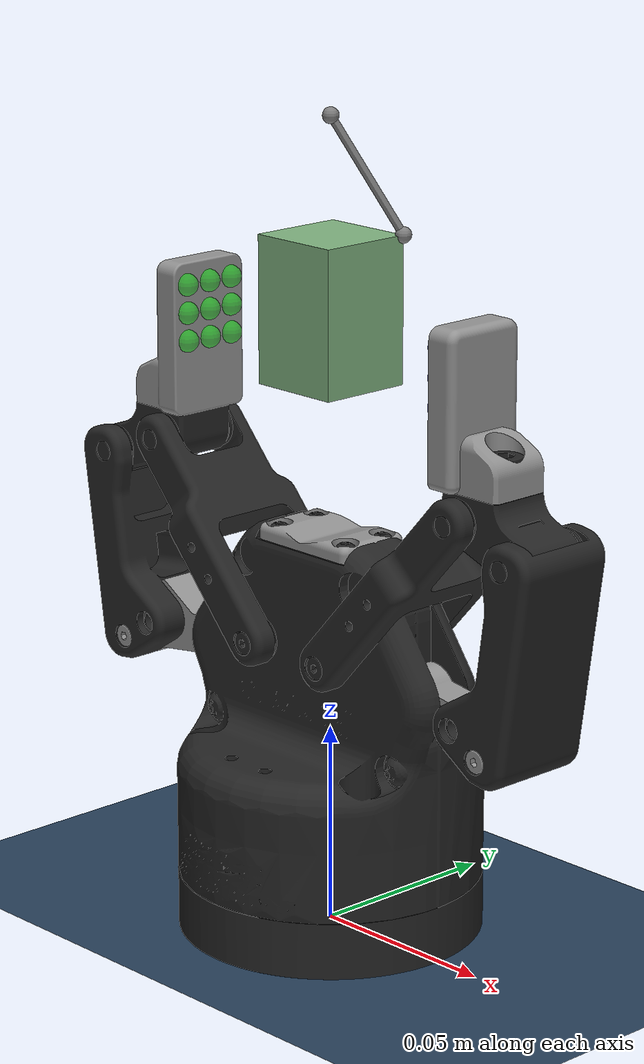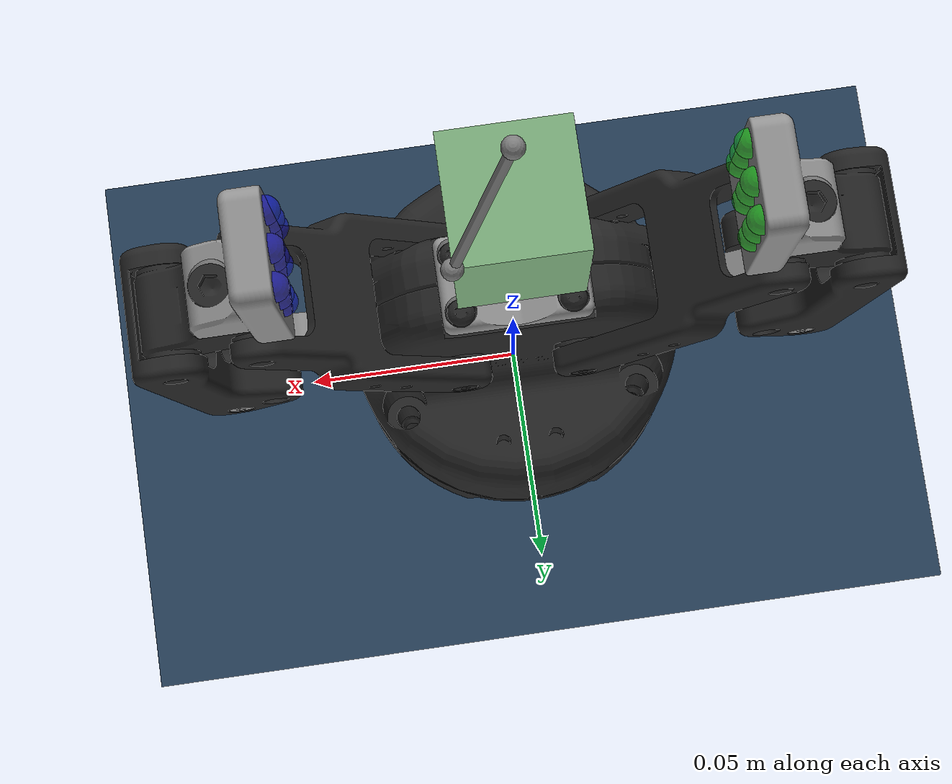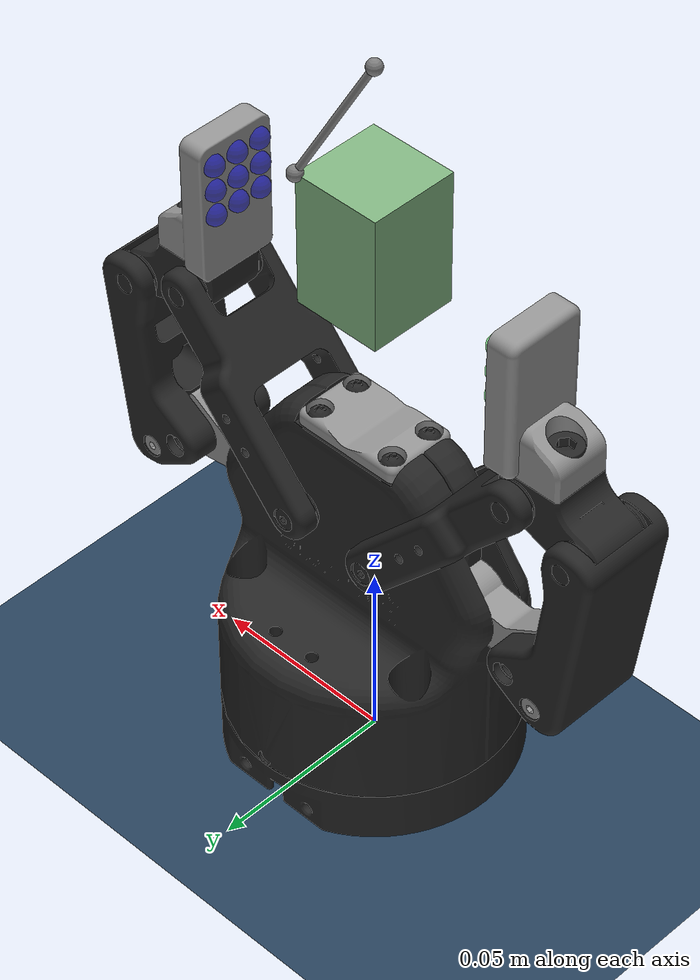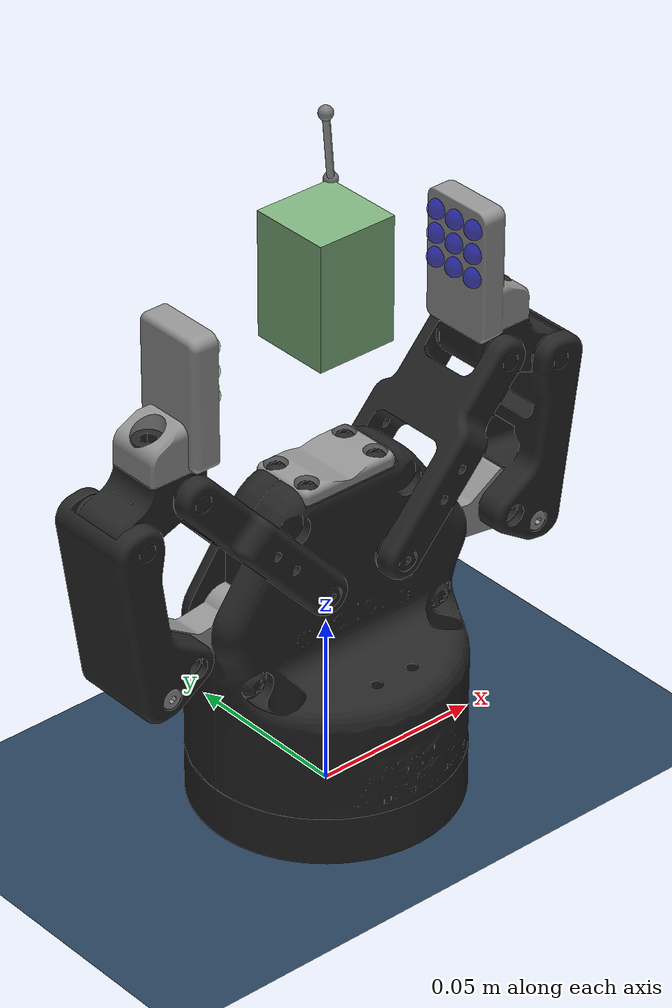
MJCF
<mujoco model="2f85 pts spheres scene">
  <include file="2f85_pts_spheres.xml" />

  <option viscosity="0.1" timestep="0.002" />

  <statistic center="0 0 0.08" extent="0.3" />

  <visual>
    <headlight diffuse="0.6 0.6 0.6" ambient="0.3 0.3 0.3" specular="0 0 0" />
    <rgba haze="0.15 0.25 0.35 1" />
    <global azimuth="60" elevation="-20" />
  </visual>

  <asset>
    <texture
      type="skybox"
      builtin="gradient"
      rgb1="0.3 0.5 0.7"
      rgb2="0 0 0"
      width="512"
      height="3072"
    />
    <texture
      type="2d"
      name="groundplane"
      builtin="checker"
      mark="edge"
      rgb1="0.2 0.3 0.4"
      rgb2="0.1 0.2 0.3"
      markrgb="0.8 0.8 0.8"
      width="300"
      height="300"
    />
    <material
      name="groundplane"
      texture="groundplane"
      texuniform="true"
      texrepeat="5 5"
      reflectance="0.2"
    />
  </asset>

  <worldbody>
    <light pos="0 0 1" />
    <light pos="0 -0.2 1" dir="0 0.2 -0.8" directional="true" />
    <geom name="floor" size="0 0 0.05" type="plane" material="groundplane" />
    <site size="0.002" pos="0 0 0.2" name="anchor" />
    <body name="object" pos="0 0 0.154">
      <freejoint />
      <geom
        name="grasp_box"
        type="box"
        size="0.012 0.012 0.018"
        mass="0.05"
        rgba="0.5 0.7 0.5 1"
        friction="0.7 0.03 0.01"
        priority="1"
      />
      <site size="0.002" pos="0.012 0.012 0.018" name="hook" />
    </body>
  </worldbody>

  <tendon>
    <spatial limited="true" range="0 0.02" width="0.001">
      <site site="hook" />
      <site site="anchor" />
    </spatial>
  </tendon>
</mujoco>

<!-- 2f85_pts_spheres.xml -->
<mujoco model="Dual_wrist_camera_pts_spheres">
  <compiler angle="radian" meshdir="assets" autolimits="true" />
  <option cone="elliptic" impratio="10" />
  <size njmax="128" nconmax="256" />
  <asset>
    <material name="metal" rgba="0.58 0.58 0.58 1" />
    <material name="silicone" rgba="0.1882 0.1882 0.1882 1" />
    <material name="black" rgba="0.149 0.149 0.149 1" />
    <mesh file="base.stl" />
    <mesh file="base_coupling.stl" />
    <mesh file="c-a01-85-open.stl" />
    <mesh file="driver.stl" />
    <mesh file="coupler.stl" />
    <mesh file="spring_link.stl" />
    <mesh file="follower.stl" />
    <mesh file="tongue.stl" />
  </asset>
  <default>
    <default class="2f85">
      <mesh scale="0.001 0.001 0.001" />
      <general biastype="affine" />
      <joint axis="0 0 1" />
      <default class="driver">
        <joint range="0 0.9" armature="0.005" damping="0.1" solimplimit="0.95 0.99 0.001" solreflimit="0.005 1" />
      </default>
      <default class="follower">
        <joint range="-0.872664 0.9" armature="0.001" solimplimit="0.95 0.99 0.001" solreflimit="0.005 1" />
      </default>
      <default class="spring_link">
        <joint range="-0.29670597283 0.9" armature="0.001" stiffness="0.05" springref="2.62" damping="0.00125" />
      </default>
      <default class="coupler">
        <joint range="-1.57 0" armature="0.001" solimplimit="0.95 0.99 0.001" solreflimit="0.005 1" />
      </default>
      <default class="visual">
        <geom type="mesh" contype="0" conaffinity="0" group="2" material="black" />
      </default>
      <default class="collision">
        <geom type="mesh" group="3" />
        <default class="pad_box1">
          <geom mass="1e-6" type="box" pos="0.043258  0 0.12" size="0.002 0.011 0.009375" friction="0.7" solimp="0.95 0.99 0.001" solref="0.004 1" priority="1" rgba="0.55 0.55 0.55 1" />
        </default>
        <default class="pad_box2">
          <geom mass="1e-6" type="box" pos="0.043258 0 0.13875" size="0.002 0.011 0.009375" friction="0.6" solimp="0.95 0.99 0.001" solref="0.004 1" priority="1" rgba="0.45 0.45 0.45 1" />
        </default>
      </default>
    </default>
  </default>
  <worldbody>
    <body name="base" childclass="2f85">
      <inertial mass="0.777441" pos="0 -2.70394e-05 0.0354675" quat="1 -0.00152849 0 0" diaginertia="0.000260285 0.000225381 0.000152708" />
      <geom class="visual" pos="0 0 0.0108" quat="0 0 0 1" mesh="base" />
      <geom class="visual" pos="0 0 0.004" quat="1 -1 0 0" mesh="base_coupling" />
      <geom class="visual" pos="0 0 0.0108" quat="1 0 0 0" material="metal" mesh="c-a01-85-open" />
      <geom class="collision" mesh="base" />
      <!-- Left-hand side 4-bar linkage -->
      <body name="left_driver" pos="-0.0306011 0.00475 0.0657045" quat="1 -1 0 0">
        <inertial mass="0.00899563" pos="0 0.0177547 0.00107314" quat="0.681301 0.732003 0 0" diaginertia="1.72352e-06 1.60906e-06 3.22006e-07" />
        <joint name="left_driver_joint" class="driver" />
        <geom class="visual" pos="0.0306011 0.0549045 -0.0047" quat="1 1 0 0" material="metal" mesh="driver" />
        <geom class="collision" pos="0.0306011 0.0549045 -0.0047" quat="1 1 0 0" mesh="driver" />
        <body name="left_coupler" pos="-0.0314249 0.00453223 -0.0102" quat="0 0 0 1">
          <inertial mass="0.0140974" pos="0 0.00301209 0.0232175" quat="0.705636 -0.0455904 0.0455904 0.705636" diaginertia="4.16206e-06 3.52216e-06 8.88131e-07" />
          <geom class="visual" pos="-0.062026 -0.0503723 0.0055" quat="1 -1 0 0" mesh="coupler" />
          <geom class="collision" pos="-0.062026 -0.0503723 0.0055" quat="1 -1 0 0" mesh="coupler" />
        </body>
      </body>
      <body name="left_spring_link" pos="-0.0127 -0.012 0.07222" quat="1 -1 0 0">
        <inertial mass="0.0221642" pos="-8.65005e-09 0.0181624 0.0212658" quat="0.663403 -0.244737 0.244737 0.663403" diaginertia="8.96853e-06 6.71733e-06 2.63931e-06" />
        <joint name="left_spring_link_joint" class="spring_link" />
        <geom class="visual" pos="0.0127 0.06142 0.01205" quat="1 1 0 0" type="mesh" mesh="spring_link" />
        <geom class="collision" pos="0.0127 0.06142 0.01205" quat="1 1 0 0" type="mesh" mesh="spring_link" />
        <body name="left_follower" pos="-0.0382079 -0.0425003 0.00295" quat="0 -1 -1.90231e-05 0">
          <inertial mass="0.0125222" pos="0 -0.011046 0.0124786" quat="1 0.1664 0 0" diaginertia="2.67415e-06 2.4559e-06 6.02031e-07" />
          <joint name="left_follower" class="follower" />
          <geom class="visual" pos="0.0509079 -0.10392 -0.0091" quat="1 -1 0 0" type="mesh" mesh="follower" />
          <geom class="visual" pos="0.0509079 -0.10392 -0.0091" quat="1 -1 0 0" type="mesh" material="metal" mesh="tongue" />
          <geom class="collision" pos="0.0509079 -0.10392 -0.0091" quat="1 -1 0 0" type="mesh" mesh="follower" />
          <geom class="collision" pos="0.0509079 -0.10392 -0.0091" quat="1 -1 0 0" type="mesh" mesh="tongue" />
          <body name="left_pad" pos="-0.0377897 -0.103916 -0.0091" quat="1 -1 0 0">
            <geom class="pad_box1" name="left_pad1" />
            <geom class="pad_box2" name="left_pad2" />
            <body name="left_taxel_body_00" pos="0.0453 -0.0070 0.1291">
              <geom name="left_taxel_geom_00" rgba="0 1 0 0.45" type="sphere" size="0.0028" mass="1e-6" friction="0.7 0.03 0.01" solimp="0.95 0.99 0.001" solref="0.004 1" priority="2" />
              <site name="left_taxel_site_00" rgba="0 1 0 0.8" size="0.0008" quat="1 0 -1 0" />
            </body>
            <body name="left_taxel_body_01" pos="0.0453 0.0000 0.1291">
              <geom name="left_taxel_geom_01" rgba="0 1 0 0.45" type="sphere" size="0.0028" mass="1e-6" friction="0.7 0.03 0.01" solimp="0.95 0.99 0.001" solref="0.004 1" priority="2" />
              <site name="left_taxel_site_01" rgba="0 1 0 0.8" size="0.0008" quat="1 0 -1 0" />
            </body>
            <body name="left_taxel_body_02" pos="0.0453 0.0070 0.1291">
              <geom name="left_taxel_geom_02" rgba="0 1 0 0.45" type="sphere" size="0.0028" mass="1e-6" friction="0.7 0.03 0.01" solimp="0.95 0.99 0.001" solref="0.004 1" priority="2" />
              <site name="left_taxel_site_02" rgba="0 1 0 0.8" size="0.0008" quat="1 0 -1 0" />
            </body>
            <body name="left_taxel_body_10" pos="0.0453 -0.0070 0.1361">
              <geom name="left_taxel_geom_10" rgba="0 1 0 0.45" type="sphere" size="0.0028" mass="1e-6" friction="0.7 0.03 0.01" solimp="0.95 0.99 0.001" solref="0.004 1" priority="2" />
              <site name="left_taxel_site_10" rgba="0 1 0 0.8" size="0.0008" quat="1 0 -1 0" />
            </body>
            <body name="left_taxel_body_11" pos="0.0453 0.0000 0.1361">
              <geom name="left_taxel_geom_11" rgba="0 1 0 0.45" type="sphere" size="0.0028" mass="1e-6" friction="0.7 0.03 0.01" solimp="0.95 0.99 0.001" solref="0.004 1" priority="2" />
              <site name="left_taxel_site_11" rgba="0 1 0 0.8" size="0.0008" quat="1 0 -1 0" />
            </body>
            <body name="left_taxel_body_12" pos="0.0453 0.0070 0.1361">
              <geom name="left_taxel_geom_12" rgba="0 1 0 0.45" type="sphere" size="0.0028" mass="1e-6" friction="0.7 0.03 0.01" solimp="0.95 0.99 0.001" solref="0.004 1" priority="2" />
              <site name="left_taxel_site_12" rgba="0 1 0 0.8" size="0.0008" quat="1 0 -1 0" />
            </body>
            <body name="left_taxel_body_20" pos="0.0453 -0.0070 0.1431">
              <geom name="left_taxel_geom_20" rgba="0 1 0 0.45" type="sphere" size="0.0028" mass="1e-6" friction="0.7 0.03 0.01" solimp="0.95 0.99 0.001" solref="0.004 1" priority="2" />
              <site name="left_taxel_site_20" rgba="0 1 0 0.8" size="0.0008" quat="1 0 -1 0" />
            </body>
            <body name="left_taxel_body_21" pos="0.0453 0.0000 0.1431">
              <geom name="left_taxel_geom_21" rgba="0 1 0 0.45" type="sphere" size="0.0028" mass="1e-6" friction="0.7 0.03 0.01" solimp="0.95 0.99 0.001" solref="0.004 1" priority="2" />
              <site name="left_taxel_site_21" rgba="0 1 0 0.8" size="0.0008" quat="1 0 -1 0" />
            </body>
            <body name="left_taxel_body_22" pos="0.0453 0.0070 0.1431">
              <geom name="left_taxel_geom_22" rgba="0 1 0 0.45" type="sphere" size="0.0028" mass="1e-6" friction="0.7 0.03 0.01" solimp="0.95 0.99 0.001" solref="0.004 1" priority="2" />
              <site name="left_taxel_site_22" rgba="0 1 0 0.8" size="0.0008" quat="1 0 -1 0" />
            </body>
            <site name="left_pad_ft_site" pos="0.0433 0.0000 0.1361" quat="1 0 -1 0" size="0.003" rgba="1 0 0 0.5" />
          </body>
        </body>
      </body>
      <!-- Right-hand side 4-bar linkage -->
      <body name="right_driver" pos="0.0306011 -0.00475 0.0657045" quat="0 0 -1 1">
        <inertial mass="0.00899563" pos="2.96931e-12 0.0177547 0.00107314" quat="0.681301 0.732003 0 0" diaginertia="1.72352e-06 1.60906e-06 3.22006e-07" />
        <joint name="right_driver_joint" class="driver" />
        <geom class="visual" pos="0.0306011 0.0549045 -0.0047" quat="1 1 0 0" material="metal" mesh="driver" />
        <geom class="collision" pos="0.0306011 0.0549045 -0.0047" quat="1 1 0 0" mesh="driver" />
        <body name="right_coupler" pos="-0.0314249 0.00453223 -0.0102" quat="0 0 0 1">
          <inertial mass="0.0140974" pos="0 0.00301209 0.0232175" quat="0.705636 -0.0455904 0.0455904 0.705636" diaginertia="4.16206e-06 3.52216e-06 8.88131e-07" />
          <geom class="visual" pos="-0.062026 -0.0503723 0.0055" quat="1 -1 0 0" mesh="coupler" />
          <geom class="collision" pos="-0.062026 -0.0503723 0.0055" quat="1 -1 0 0" mesh="coupler" />
        </body>
      </body>
      <body name="right_spring_link" pos="0.0127 0.012 0.07222" quat="0 0 -1 1">
        <inertial mass="0.0221642" pos="-8.65005e-09 0.0181624 0.0212658" quat="0.663403 -0.244737 0.244737 0.663403" diaginertia="8.96853e-06 6.71733e-06 2.63931e-06" />
        <joint name="right_spring_link_joint" class="spring_link" />
        <geom class="visual" pos="0.0127 0.06142 0.01205" quat="1 1 0 0" mesh="spring_link" />
        <geom class="collision" pos="0.0127 0.06142 0.01205" quat="1 1 0 0" mesh="spring_link" />
        <body name="right_follower" pos="-0.0382079 -0.0425003 0.00295" quat="0 -1 0 0">
          <inertial mass="0.0125222" pos="0 -0.011046 0.0124786" quat="1 0.1664 0 0" diaginertia="2.67415e-06 2.4559e-06 6.02031e-07" />
          <joint name="right_follower_joint" class="follower" />
          <geom class="visual" pos="0.0509079 -0.10392 -0.0091" quat="1 -1 0 0" material="metal" mesh="tongue" />
          <geom class="visual" pos="0.0509079 -0.10392 -0.0091" quat="1 -1 0 0" mesh="follower" />
          <geom class="collision" pos="0.0509079 -0.10392 -0.0091" quat="1 -1 0 0" mesh="tongue" />
          <geom class="collision" pos="0.0509079 -0.10392 -0.0091" quat="1 -1 0 0" mesh="follower" />
          <body name="right_pad" pos="-0.0377897 -0.103916 -0.0091" quat="1 -1 0 0">
            <geom class="pad_box1" name="right_pad1" />
            <geom class="pad_box2" name="right_pad2" />
            <body name="right_taxel_body_00" pos="0.0453 -0.0070 0.1291">
              <geom name="right_taxel_geom_00" rgba="0 0 1 0.45" type="sphere" size="0.0028" mass="1e-6" friction="0.7 0.03 0.01" solimp="0.95 0.99 0.001" solref="0.004 1" priority="2" />
              <site name="right_taxel_site_00" rgba="0 0 1 0.8" size="0.0008" quat="1 0 -1 0" />
            </body>
            <body name="right_taxel_body_01" pos="0.0453 0.0000 0.1291">
              <geom name="right_taxel_geom_01" rgba="0 0 1 0.45" type="sphere" size="0.0028" mass="1e-6" friction="0.7 0.03 0.01" solimp="0.95 0.99 0.001" solref="0.004 1" priority="2" />
              <site name="right_taxel_site_01" rgba="0 0 1 0.8" size="0.0008" quat="1 0 -1 0" />
            </body>
            <body name="right_taxel_body_02" pos="0.0453 0.0070 0.1291">
              <geom name="right_taxel_geom_02" rgba="0 0 1 0.45" type="sphere" size="0.0028" mass="1e-6" friction="0.7 0.03 0.01" solimp="0.95 0.99 0.001" solref="0.004 1" priority="2" />
              <site name="right_taxel_site_02" rgba="0 0 1 0.8" size="0.0008" quat="1 0 -1 0" />
            </body>
            <body name="right_taxel_body_10" pos="0.0453 -0.0070 0.1361">
              <geom name="right_taxel_geom_10" rgba="0 0 1 0.45" type="sphere" size="0.0028" mass="1e-6" friction="0.7 0.03 0.01" solimp="0.95 0.99 0.001" solref="0.004 1" priority="2" />
              <site name="right_taxel_site_10" rgba="0 0 1 0.8" size="0.0008" quat="1 0 -1 0" />
            </body>
            <body name="right_taxel_body_11" pos="0.0453 0.0000 0.1361">
              <geom name="right_taxel_geom_11" rgba="0 0 1 0.45" type="sphere" size="0.0028" mass="1e-6" friction="0.7 0.03 0.01" solimp="0.95 0.99 0.001" solref="0.004 1" priority="2" />
              <site name="right_taxel_site_11" rgba="0 0 1 0.8" size="0.0008" quat="1 0 -1 0" />
            </body>
            <body name="right_taxel_body_12" pos="0.0453 0.0070 0.1361">
              <geom name="right_taxel_geom_12" rgba="0 0 1 0.45" type="sphere" size="0.0028" mass="1e-6" friction="0.7 0.03 0.01" solimp="0.95 0.99 0.001" solref="0.004 1" priority="2" />
              <site name="right_taxel_site_12" rgba="0 0 1 0.8" size="0.0008" quat="1 0 -1 0" />
            </body>
            <body name="right_taxel_body_20" pos="0.0453 -0.0070 0.1431">
              <geom name="right_taxel_geom_20" rgba="0 0 1 0.45" type="sphere" size="0.0028" mass="1e-6" friction="0.7 0.03 0.01" solimp="0.95 0.99 0.001" solref="0.004 1" priority="2" />
              <site name="right_taxel_site_20" rgba="0 0 1 0.8" size="0.0008" quat="1 0 -1 0" />
            </body>
            <body name="right_taxel_body_21" pos="0.0453 0.0000 0.1431">
              <geom name="right_taxel_geom_21" rgba="0 0 1 0.45" type="sphere" size="0.0028" mass="1e-6" friction="0.7 0.03 0.01" solimp="0.95 0.99 0.001" solref="0.004 1" priority="2" />
              <site name="right_taxel_site_21" rgba="0 0 1 0.8" size="0.0008" quat="1 0 -1 0" />
            </body>
            <body name="right_taxel_body_22" pos="0.0453 0.0070 0.1431">
              <geom name="right_taxel_geom_22" rgba="0 0 1 0.45" type="sphere" size="0.0028" mass="1e-6" friction="0.7 0.03 0.01" solimp="0.95 0.99 0.001" solref="0.004 1" priority="2" />
              <site name="right_taxel_site_22" rgba="0 0 1 0.8" size="0.0008" quat="1 0 -1 0" />
            </body>
            <site name="right_pad_ft_site" pos="0.0433 0.0000 0.1361" quat="1 0 -1 0" size="0.003" rgba="1 0 0 0.5" />
          </body>
        </body>
      </body>
    </body>
  </worldbody>
  <contact>
    <exclude body1="base" body2="left_driver" />
    <exclude body1="base" body2="right_driver" />
    <exclude body1="base" body2="left_spring_link" />
    <exclude body1="base" body2="right_spring_link" />
    <exclude body1="right_coupler" body2="right_follower" />
    <exclude body1="left_coupler" body2="left_follower" />
  </contact>
  <tendon>
    <fixed name="split">
      <joint joint="right_driver_joint" coef="0.485" />
      <joint joint="left_driver_joint" coef="0.485" />
    </fixed>
  </tendon>
  <equality>
    <connect anchor="-0.0179014 -0.00651468 0.0044" body1="right_follower" body2="right_coupler" solimp="0.95 0.99 0.001" solref="0.005 1" />
    <connect anchor="-0.0179014 -0.00651468 0.0044" body1="left_follower" body2="left_coupler" solimp="0.95 0.99 0.001" solref="0.005 1" />
    <joint joint1="right_driver_joint" joint2="left_driver_joint" polycoef="0 1 0 0 0" solimp="0.95 0.99 0.001" solref="0.005 1" />
  </equality>
  <actuator>
    <general class="2f85" name="fingers_actuator" tendon="split" forcerange="-5 5" ctrlrange="0 255" gainprm="0.3137255 0 0" biasprm="0 -100 -10" />
  </actuator>
  <sensor>
    <force name="left_taxel_force_00" site="left_taxel_site_00" />
    <force name="left_taxel_force_01" site="left_taxel_site_01" />
    <force name="left_taxel_force_02" site="left_taxel_site_02" />
    <force name="left_taxel_force_10" site="left_taxel_site_10" />
    <force name="left_taxel_force_11" site="left_taxel_site_11" />
    <force name="left_taxel_force_12" site="left_taxel_site_12" />
    <force name="left_taxel_force_20" site="left_taxel_site_20" />
    <force name="left_taxel_force_21" site="left_taxel_site_21" />
    <force name="left_taxel_force_22" site="left_taxel_site_22" />
    <force name="right_taxel_force_00" site="right_taxel_site_00" />
    <force name="right_taxel_force_01" site="right_taxel_site_01" />
    <force name="right_taxel_force_02" site="right_taxel_site_02" />
    <force name="right_taxel_force_10" site="right_taxel_site_10" />
    <force name="right_taxel_force_11" site="right_taxel_site_11" />
    <force name="right_taxel_force_12" site="right_taxel_site_12" />
    <force name="right_taxel_force_20" site="right_taxel_site_20" />
    <force name="right_taxel_force_21" site="right_taxel_site_21" />
    <force name="right_taxel_force_22" site="right_taxel_site_22" />
    <force name="left_pad_force" site="left_pad_ft_site" />
    <torque name="left_pad_torque" site="left_pad_ft_site" />
    <force name="right_pad_force" site="right_pad_ft_site" />
    <torque name="right_pad_torque" site="right_pad_ft_site" />
  </sensor>
</mujoco>
